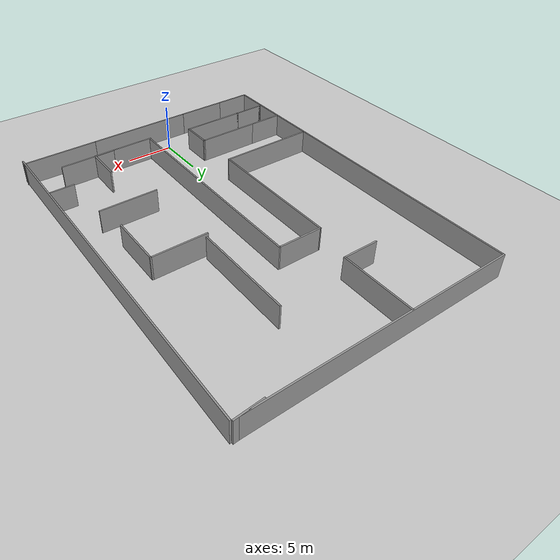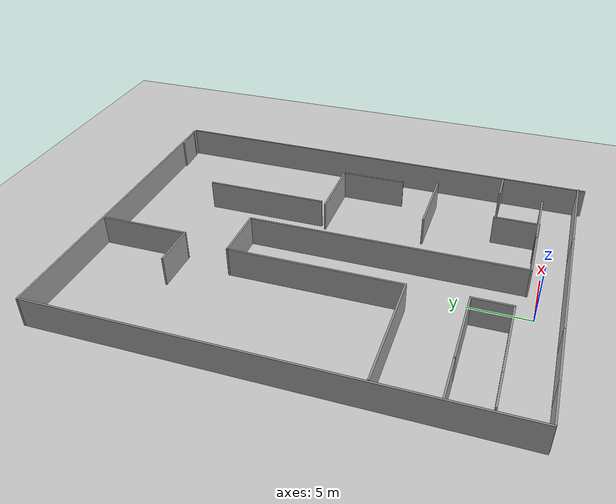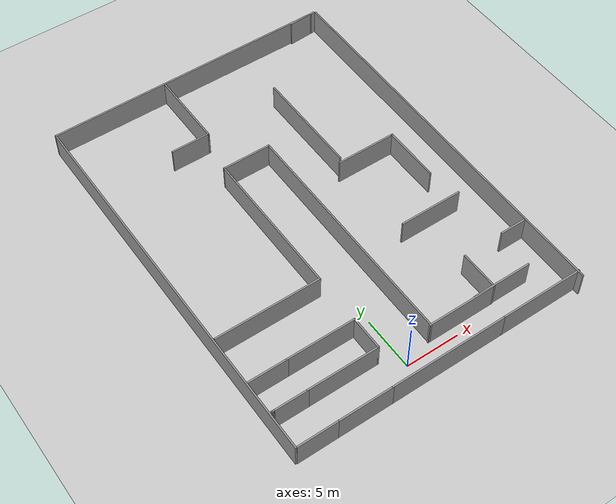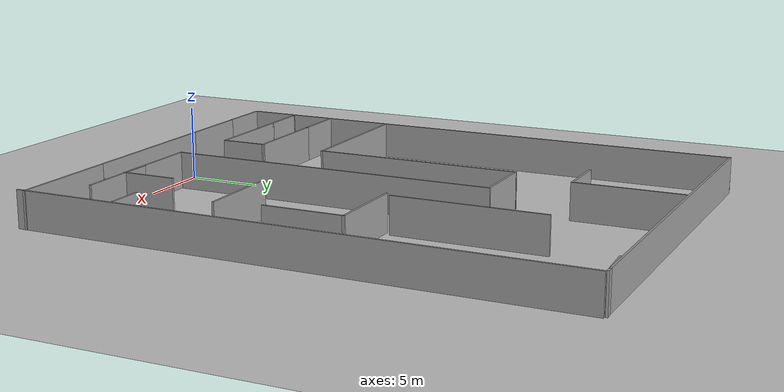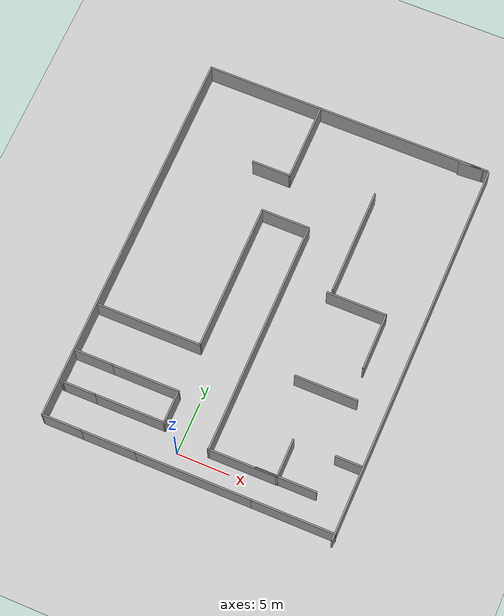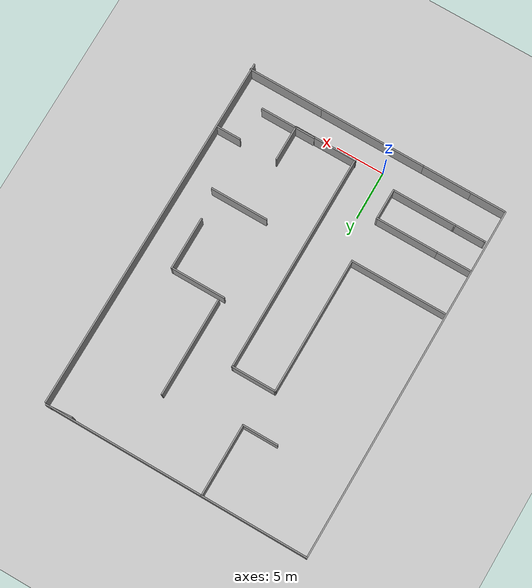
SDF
<sdf version="1.4">
  <world name="default">

    <scene>
      <ambient>0.4 0.4 0.4 1</ambient>
      <background>0.7 0.7 0.7 1</background>
      <shadows>true</shadows>
    </scene>

    <!-- A global light source -->
    <include>
      <uri>model://sun</uri>
    </include>

    <!-- A ground plane -->
    <include>
      <uri>model://ground_plane</uri>
    </include>

    <physics type="ode">
      <real_time_update_rate>1000.0</real_time_update_rate>
      <max_step_size>0.001</max_step_size>
      <real_time_factor>1</real_time_factor>
      <ode>
        <solver>
          <type>quick</type>
          <iters>150</iters>
          <precon_iters>0</precon_iters>
          <sor>1.400000</sor>
          <use_dynamic_moi_rescaling>1</use_dynamic_moi_rescaling>
        </solver>
        <constraints>
          <cfm>0.00001</cfm>
          <erp>0.2</erp>
          <contact_max_correcting_vel>2000.000000</contact_max_correcting_vel>
          <contact_surface_layer>0.01000</contact_surface_layer>
        </constraints>
      </ode>
    </physics>
  <model name='mymap'>
    <pose>7.77192 9.18024 0 0 -0 0</pose>
    <link name='Wall_11'>
      <collision name='Wall_11_Collision'>
        <geometry>
          <box>
            <size>5.5 0.15 2.5</size>
          </box>
        </geometry>
        <pose>0 0 1.25 0 -0 0</pose>
      </collision>
      <visual name='Wall_11_Visual'>
        <pose>0 0 1.25 0 -0 0</pose>
        <geometry>
          <box>
            <size>5.5 0.15 2.5</size>
          </box>
        </geometry>
        <material>
          <script>
            <uri>file://media/materials/scripts/gazebo.material</uri>
            <name>Gazebo/Grey</name>
          </script>
          <ambient>1 1 1 1</ambient>
        </material>
        <meta>
          <layer>0</layer>
        </meta>
      </visual>
      <pose>4.51089 6.43024 0 0 -0 1.5708</pose>
    </link>
    <link name='Wall_12'>
      <collision name='Wall_12_Collision'>
        <geometry>
          <box>
            <size>5.75 0.15 2.5</size>
          </box>
        </geometry>
        <pose>0 0 1.25 0 -0 0</pose>
      </collision>
      <visual name='Wall_12_Visual'>
        <pose>0 0 1.25 0 -0 0</pose>
        <geometry>
          <box>
            <size>5.75 0.15 2.5</size>
          </box>
        </geometry>
        <material>
          <script>
            <uri>file://media/materials/scripts/gazebo.material</uri>
            <name>Gazebo/Grey</name>
          </script>
          <ambient>1 1 1 1</ambient>
        </material>
        <meta>
          <layer>0</layer>
        </meta>
      </visual>
      <pose>1.7109 9.10524 0 0 -0 3.14159</pose>
    </link>
    <link name='Wall_3'>
      <collision name='Wall_3_Collision'>
        <geometry>
          <box>
            <size>5.75 0.15 2.5</size>
          </box>
        </geometry>
        <pose>0 0 1.25 0 -0 0</pose>
      </collision>
      <visual name='Wall_3_Visual'>
        <pose>0 0 1.25 0 -0 0</pose>
        <geometry>
          <box>
            <size>5.75 0.15 2.5</size>
          </box>
        </geometry>
        <material>
          <script>
            <uri>file://media/materials/scripts/gazebo.material</uri>
            <name>Gazebo/Grey</name>
          </script>
          <ambient>1 1 1 1</ambient>
        </material>
        <meta>
          <layer>0</layer>
        </meta>
      </visual>
      <pose>2.183 -8.30822 0 0 -0 0</pose>
    </link>
    <link name='Wall_5'>
      <collision name='Wall_5_Collision'>
        <geometry>
          <box>
            <size>2.5 0.15 2.5</size>
          </box>
        </geometry>
        <pose>0 0 1.25 0 -0 0</pose>
      </collision>
      <visual name='Wall_5_Visual'>
        <pose>0 0 1.25 0 -0 0</pose>
        <geometry>
          <box>
            <size>2.5 0.15 2.5</size>
          </box>
        </geometry>
        <material>
          <script>
            <uri>file://media/materials/scripts/gazebo.material</uri>
            <name>Gazebo/Grey</name>
          </script>
          <ambient>1 1 1 1</ambient>
        </material>
        <meta>
          <layer>0</layer>
        </meta>
      </visual>
      <pose>6.52192 -4.68483 0 0 -0 0</pose>
    </link>
    <link name='Wall_7'>
      <collision name='Wall_7_Collision'>
        <geometry>
          <box>
            <size>6 0.15 2.5</size>
          </box>
        </geometry>
        <pose>0 0 1.25 0 -0 0</pose>
      </collision>
      <visual name='Wall_7_Visual'>
        <pose>0 0 1.25 0 -0 0</pose>
        <geometry>
          <box>
            <size>6 0.15 2.5</size>
          </box>
        </geometry>
        <material>
          <script>
            <uri>file://media/materials/scripts/gazebo.material</uri>
            <name>Gazebo/Grey</name>
          </script>
          <ambient>1 1 1 1</ambient>
        </material>
        <meta>
          <layer>0</layer>
        </meta>
      </visual>
      <pose>2.2058 0.72814 0 0 -0 3.14159</pose>
    </link>
    <static>1</static>
  </model>
  <model name='Untitled'>
    <pose>1.96533 16.2746 0 0 -0 0</pose>
    <link name='Wall_12'>
      <collision name='Wall_12_Collision'>
        <geometry>
          <box>
            <size>3.25 0.15 2.5</size>
          </box>
        </geometry>
        <pose>0 0 1.25 0 -0 0</pose>
      </collision>
      <visual name='Wall_12_Visual'>
        <pose>0 0 1.25 0 -0 0</pose>
        <geometry>
          <box>
            <size>3.25 0.15 2.5</size>
          </box>
        </geometry>
        <material>
          <script>
            <uri>file://media/materials/scripts/gazebo.material</uri>
            <name>Gazebo/Grey</name>
          </script>
          <ambient>1 1 1 1</ambient>
        </material>
        <meta>
          <layer>0</layer>
        </meta>
      </visual>
      <pose>-3.77455 -13.2054 0 0 -0 1.5708</pose>
    </link>
    <link name='Wall_13'>
      <collision name='Wall_13_Collision'>
        <geometry>
          <box>
            <size>6.5 0.15 2.5</size>
          </box>
        </geometry>
        <pose>0 0 1.25 0 -0 0</pose>
      </collision>
      <visual name='Wall_13_Visual'>
        <pose>0 0 1.25 0 -0 0</pose>
        <geometry>
          <box>
            <size>6.5 0.15 2.5</size>
          </box>
        </geometry>
        <material>
          <script>
            <uri>file://media/materials/scripts/gazebo.material</uri>
            <name>Gazebo/Grey</name>
          </script>
          <ambient>1 1 1 1</ambient>
        </material>
        <meta>
          <layer>0</layer>
        </meta>
      </visual>
      <pose>-6.94955 -11.6554 0 0 -0 3.14159</pose>
    </link>
    <link name='Wall_177'>
      <collision name='Wall_177_Collision'>
        <geometry>
          <box>
            <size>2.76032 0.15 2.5</size>
          </box>
        </geometry>
        <pose>0 0 1.25 0 -0 0</pose>
      </collision>
      <visual name='Wall_177_Visual'>
        <pose>0 0 1.25 0 -0 0</pose>
        <geometry>
          <box>
            <size>2.76032 0.15 2.5</size>
          </box>
        </geometry>
        <material>
          <script>
            <uri>file://media/materials/scripts/gazebo.material</uri>
            <name>Gazebo/Grey</name>
          </script>
          <ambient>1 1 1 1</ambient>
        </material>
        <meta>
          <layer>0</layer>
        </meta>
      </visual>
      <pose>12.3652 18.641 0 0 -0 0.062386</pose>
    </link>
    <link name='Wall_178'>
      <collision name='Wall_178_Collision'>
        <geometry>
          <box>
            <size>37.4366 0.15 2.5</size>
          </box>
        </geometry>
        <pose>0 0 1.25 0 -0 0</pose>
      </collision>
      <visual name='Wall_178_Visual'>
        <pose>0 0 1.25 0 -0 0</pose>
        <geometry>
          <box>
            <size>37.4366 0.15 2.5</size>
          </box>
        </geometry>
        <material>
          <script>
            <uri>file://media/materials/scripts/gazebo.material</uri>
            <name>Gazebo/Grey</name>
          </script>
          <ambient>1 1 1 1</ambient>
        </material>
        <meta>
          <layer>0</layer>
        </meta>
      </visual>
      <pose>13.7375 -0.083447 0 0 -0 -1.57579</pose>
    </link>
    <link name='Wall_21'>
      <collision name='Wall_21_Collision'>
        <geometry>
          <box>
            <size>3.75 0.15 2.5</size>
          </box>
        </geometry>
        <pose>0 0 1.25 0 -0 0</pose>
      </collision>
      <visual name='Wall_21_Visual'>
        <pose>0 0 1.25 0 -0 0</pose>
        <geometry>
          <box>
            <size>3.75 0.15 2.5</size>
          </box>
        </geometry>
        <material>
          <script>
            <uri>file://media/materials/scripts/gazebo.material</uri>
            <name>Gazebo/Grey</name>
          </script>
          <ambient>1 1 1 1</ambient>
        </material>
        <meta>
          <layer>0</layer>
        </meta>
      </visual>
      <pose>-11.8933 -18.1939 0 0 -0 3.14159</pose>
    </link>
    <link name='Wall_25'>
      <collision name='Wall_25_Collision'>
        <geometry>
          <box>
            <size>0.15 0.15 2.5</size>
          </box>
        </geometry>
        <pose>0 0 1.25 0 -0 0</pose>
      </collision>
      <visual name='Wall_25_Visual'>
        <pose>0 0 1.25 0 -0 0</pose>
        <geometry>
          <box>
            <size>0.15 0.15 2.5</size>
          </box>
        </geometry>
        <material>
          <script>
            <uri>file://media/materials/scripts/gazebo.material</uri>
            <name>Gazebo/Grey</name>
          </script>
          <ambient>1 1 1 1</ambient>
        </material>
        <meta>
          <layer>0</layer>
        </meta>
      </visual>
      <pose>-10.3687 -14.7554 0 0 -0 0</pose>
    </link>
    <link name='Wall_33'>
      <collision name='Wall_33_Collision'>
        <geometry>
          <box>
            <size>0.15 0.15 2.5</size>
          </box>
        </geometry>
        <pose>0 0 1.25 0 -0 0</pose>
      </collision>
      <visual name='Wall_33_Visual'>
        <pose>0 0 1.25 0 -0 0</pose>
        <geometry>
          <box>
            <size>0.15 0.15 2.5</size>
          </box>
        </geometry>
        <material>
          <script>
            <uri>file://media/materials/scripts/gazebo.material</uri>
            <name>Gazebo/Grey</name>
          </script>
          <ambient>1 1 1 1</ambient>
        </material>
        <meta>
          <layer>0</layer>
        </meta>
      </visual>
      <pose>-13.4687 -14.7554 0 0 -0 0</pose>
    </link>
    <link name='Wall_35'>
      <collision name='Wall_35_Collision'>
        <geometry>
          <box>
            <size>3.25 0.15 2.5</size>
          </box>
        </geometry>
        <pose>0 0 1.25 0 -0 0</pose>
      </collision>
      <visual name='Wall_35_Visual'>
        <pose>0 0 1.25 0 -0 0</pose>
        <geometry>
          <box>
            <size>3.25 0.15 2.5</size>
          </box>
        </geometry>
        <material>
          <script>
            <uri>file://media/materials/scripts/gazebo.material</uri>
            <name>Gazebo/Grey</name>
          </script>
          <ambient>1 1 1 1</ambient>
        </material>
        <meta>
          <layer>0</layer>
        </meta>
      </visual>
      <pose>-11.9187 -14.7554 0 0 -0 3.14159</pose>
    </link>
    <link name='Wall_37'>
      <collision name='Wall_37_Collision'>
        <geometry>
          <box>
            <size>0.25 0.15 2.5</size>
          </box>
        </geometry>
        <pose>0 0 1.25 0 -0 0</pose>
      </collision>
      <visual name='Wall_37_Visual'>
        <pose>0 0 1.25 0 -0 0</pose>
        <geometry>
          <box>
            <size>0.25 0.15 2.5</size>
          </box>
        </geometry>
        <material>
          <script>
            <uri>file://media/materials/scripts/gazebo.material</uri>
            <name>Gazebo/Grey</name>
          </script>
          <ambient>1 1 1 1</ambient>
        </material>
        <meta>
          <layer>0</layer>
        </meta>
      </visual>
      <pose>-13.5187 -14.7554 0 0 -0 3.14159</pose>
    </link>
    <link name='Wall_4'>
      <collision name='Wall_4_Collision'>
        <geometry>
          <box>
            <size>11 0.15 2.5</size>
          </box>
        </geometry>
        <pose>0 0 1.25 0 -0 0</pose>
      </collision>
      <visual name='Wall_4_Visual'>
        <pose>0 0 1.25 0 -0 0</pose>
        <geometry>
          <box>
            <size>11 0.15 2.5</size>
          </box>
        </geometry>
        <material>
          <script>
            <uri>file://media/materials/scripts/gazebo.material</uri>
            <name>Gazebo/Grey</name>
          </script>
          <ambient>1 1 1 1</ambient>
        </material>
        <meta>
          <layer>0</layer>
        </meta>
      </visual>
      <pose>0.431747 -18.1939 0 0 -0 0</pose>
    </link>
    <link name='Wall_41'>
      <collision name='Wall_41_Collision'>
        <geometry>
          <box>
            <size>22.75 0.15 2.5</size>
          </box>
        </geometry>
        <pose>0 0 1.25 0 -0 0</pose>
      </collision>
      <visual name='Wall_41_Visual'>
        <pose>0 0 1.25 0 -0 0</pose>
        <geometry>
          <box>
            <size>22.75 0.15 2.5</size>
          </box>
        </geometry>
        <material>
          <script>
            <uri>file://media/materials/scripts/gazebo.material</uri>
            <name>Gazebo/Grey</name>
          </script>
          <ambient>1 1 1 1</ambient>
        </material>
        <meta>
          <layer>0</layer>
        </meta>
      </visual>
      <pose>0.774348 -4.16261 0 0 -0 1.5708</pose>
    </link>
    <link name='Wall_42'>
      <collision name='Wall_42_Collision'>
        <geometry>
          <box>
            <size>4.65321 0.15 2.5</size>
          </box>
        </geometry>
        <pose>0 0 1.25 0 -0 0</pose>
      </collision>
      <visual name='Wall_42_Visual'>
        <pose>0 0 1.25 0 -0 0</pose>
        <geometry>
          <box>
            <size>4.65321 0.15 2.5</size>
          </box>
        </geometry>
        <material>
          <script>
            <uri>file://media/materials/scripts/gazebo.material</uri>
            <name>Gazebo/Grey</name>
          </script>
          <ambient>1 1 1 1</ambient>
        </material>
        <meta>
          <layer>0</layer>
        </meta>
      </visual>
      <pose>-1.52378 7.13845 0 0 -0 3.14112</pose>
    </link>
    <link name='Wall_43'>
      <collision name='Wall_43_Collision'>
        <geometry>
          <box>
            <size>14.25 0.15 2.5</size>
          </box>
        </geometry>
        <pose>0 0 1.25 0 -0 0</pose>
      </collision>
      <visual name='Wall_43_Visual'>
        <pose>0 0 1.25 0 -0 0</pose>
        <geometry>
          <box>
            <size>14.25 0.15 2.5</size>
          </box>
        </geometry>
        <material>
          <script>
            <uri>file://media/materials/scripts/gazebo.material</uri>
            <name>Gazebo/Grey</name>
          </script>
          <ambient>1 1 1 1</ambient>
        </material>
        <meta>
          <layer>0</layer>
        </meta>
      </visual>
      <pose>-3.77538 0.089515 0 0 -0 -1.5708</pose>
    </link>
    <link name='Wall_48'>
      <collision name='Wall_48_Collision'>
        <geometry>
          <box>
            <size>37 0.15 2.5</size>
          </box>
        </geometry>
        <pose>0 0 1.25 0 -0 0</pose>
      </collision>
      <visual name='Wall_48_Visual'>
        <pose>0 0 1.25 0 -0 0</pose>
        <geometry>
          <box>
            <size>37 0.15 2.5</size>
          </box>
        </geometry>
        <material>
          <script>
            <uri>file://media/materials/scripts/gazebo.material</uri>
            <name>Gazebo/Grey</name>
          </script>
          <ambient>1 1 1 1</ambient>
        </material>
        <meta>
          <layer>0</layer>
        </meta>
      </visual>
      <pose>-13.8309 0.2713 0 0 -0 -1.5708</pose>
    </link>
    <link name='Wall_52'>
      <collision name='Wall_52_Collision'>
        <geometry>
          <box>
            <size>8 0.15 2.5</size>
          </box>
        </geometry>
        <pose>0 0 1.25 0 -0 0</pose>
      </collision>
      <visual name='Wall_52_Visual'>
        <pose>0 0 1.25 0 -0 0</pose>
        <geometry>
          <box>
            <size>8 0.15 2.5</size>
          </box>
        </geometry>
        <material>
          <script>
            <uri>file://media/materials/scripts/gazebo.material</uri>
            <name>Gazebo/Grey</name>
          </script>
          <ambient>1 1 1 1</ambient>
        </material>
        <meta>
          <layer>0</layer>
        </meta>
      </visual>
      <pose>9.78175 -18.1939 0 0 -0 0</pose>
    </link>
    <link name='Wall_54'>
      <collision name='Wall_54_Collision'>
        <geometry>
          <box>
            <size>6.59679 0.15 2.5</size>
          </box>
        </geometry>
        <pose>0 0 1.25 0 -0 0</pose>
      </collision>
      <visual name='Wall_54_Visual'>
        <pose>0 0 1.25 0 -0 0</pose>
        <geometry>
          <box>
            <size>6.59679 0.15 2.5</size>
          </box>
        </geometry>
        <material>
          <script>
            <uri>file://media/materials/scripts/gazebo.material</uri>
            <name>Gazebo/Grey</name>
          </script>
          <ambient>1 1 1 1</ambient>
        </material>
        <meta>
          <layer>0</layer>
        </meta>
      </visual>
      <pose>3.95122 -15.4615 0 0 -0 0.00033</pose>
    </link>
    <link name='Wall_55'>
      <collision name='Wall_55_Collision'>
        <geometry>
          <box>
            <size>3.75 0.15 2.5</size>
          </box>
        </geometry>
        <pose>0 0 1.25 0 -0 0</pose>
      </collision>
      <visual name='Wall_55_Visual'>
        <pose>0 0 1.25 0 -0 0</pose>
        <geometry>
          <box>
            <size>3.75 0.15 2.5</size>
          </box>
        </geometry>
        <material>
          <script>
            <uri>file://media/materials/scripts/gazebo.material</uri>
            <name>Gazebo/Grey</name>
          </script>
          <ambient>1 1 1 1</ambient>
        </material>
        <meta>
          <layer>0</layer>
        </meta>
      </visual>
      <pose>7.17462 -13.6605 0 0 -0 1.5708</pose>
    </link>
    <link name='Wall_6'>
      <collision name='Wall_6_Collision'>
        <geometry>
          <box>
            <size>5.25 0.15 2.5</size>
          </box>
        </geometry>
        <pose>0 0 1.25 0 -0 0</pose>
      </collision>
      <visual name='Wall_6_Visual'>
        <pose>0 0 1.25 0 -0 0</pose>
        <geometry>
          <box>
            <size>5.25 0.15 2.5</size>
          </box>
        </geometry>
        <material>
          <script>
            <uri>file://media/materials/scripts/gazebo.material</uri>
            <name>Gazebo/Grey</name>
          </script>
          <ambient>1 1 1 1</ambient>
        </material>
        <meta>
          <layer>0</layer>
        </meta>
      </visual>
      <pose>-7.54325 -18.1939 0 0 -0 3.14159</pose>
    </link>
    <link name='Wall_63'>
      <collision name='Wall_63_Collision'>
        <geometry>
          <box>
            <size>3.75 0.15 2.5</size>
          </box>
        </geometry>
        <pose>0 0 1.25 0 -0 0</pose>
      </collision>
      <visual name='Wall_63_Visual'>
        <pose>0 0 1.25 0 -0 0</pose>
        <geometry>
          <box>
            <size>3.75 0.15 2.5</size>
          </box>
        </geometry>
        <material>
          <script>
            <uri>file://media/materials/scripts/gazebo.material</uri>
            <name>Gazebo/Grey</name>
          </script>
          <ambient>1 1 1 1</ambient>
        </material>
        <meta>
          <layer>0</layer>
        </meta>
      </visual>
      <pose>-4.60424 11.2856 0 0 -0 0</pose>
    </link>
    <link name='Wall_64'>
      <collision name='Wall_64_Collision'>
        <geometry>
          <box>
            <size>7.5 0.15 2.5</size>
          </box>
        </geometry>
        <pose>0 0 1.25 0 -0 0</pose>
      </collision>
      <visual name='Wall_64_Visual'>
        <pose>0 0 1.25 0 -0 0</pose>
        <geometry>
          <box>
            <size>7.5 0.15 2.5</size>
          </box>
        </geometry>
        <material>
          <script>
            <uri>file://media/materials/scripts/gazebo.material</uri>
            <name>Gazebo/Grey</name>
          </script>
          <ambient>1 1 1 1</ambient>
        </material>
        <meta>
          <layer>0</layer>
        </meta>
      </visual>
      <pose>-2.80424 14.9606 0 0 -0 1.5708</pose>
    </link>
    <link name='Wall_69'>
      <collision name='Wall_69_Collision'>
        <geometry>
          <box>
            <size>10.25 0.15 2.5</size>
          </box>
        </geometry>
        <pose>0 0 1.25 0 -0 0</pose>
      </collision>
      <visual name='Wall_69_Visual'>
        <pose>0 0 1.25 0 -0 0</pose>
        <geometry>
          <box>
            <size>10.25 0.15 2.5</size>
          </box>
        </geometry>
        <material>
          <script>
            <uri>file://media/materials/scripts/gazebo.material</uri>
            <name>Gazebo/Grey</name>
          </script>
          <ambient>1 1 1 1</ambient>
        </material>
        <meta>
          <layer>0</layer>
        </meta>
      </visual>
      <pose>5.04082 7.52006 0 0 -0 -1.5708</pose>
    </link>
    <link name='Wall_75'>
      <collision name='Wall_75_Collision'>
        <geometry>
          <box>
            <size>3.75 0.15 2.5</size>
          </box>
        </geometry>
        <pose>0 0 1.25 0 -0 0</pose>
      </collision>
      <visual name='Wall_75_Visual'>
        <pose>0 0 1.25 0 -0 0</pose>
        <geometry>
          <box>
            <size>3.75 0.15 2.5</size>
          </box>
        </geometry>
        <material>
          <script>
            <uri>file://media/materials/scripts/gazebo.material</uri>
            <name>Gazebo/Grey</name>
          </script>
          <ambient>1 1 1 1</ambient>
        </material>
        <meta>
          <layer>0</layer>
        </meta>
      </visual>
      <pose>-11.9246 -11.6554 0 0 -0 3.14159</pose>
    </link>
    <link name='Wall_77'>
      <collision name='Wall_77_Collision'>
        <geometry>
          <box>
            <size>10 0.15 2.5</size>
          </box>
        </geometry>
        <pose>0 0 1.25 0 -0 0</pose>
      </collision>
      <visual name='Wall_77_Visual'>
        <pose>0 0 1.25 0 -0 0</pose>
        <geometry>
          <box>
            <size>10 0.15 2.5</size>
          </box>
        </geometry>
        <material>
          <script>
            <uri>file://media/materials/scripts/gazebo.material</uri>
            <name>Gazebo/Grey</name>
          </script>
          <ambient>1 1 1 1</ambient>
        </material>
        <meta>
          <layer>0</layer>
        </meta>
      </visual>
      <pose>-8.70038 -6.96049 0 0 -0 3.14159</pose>
    </link>
    <link name='Wall_79'>
      <collision name='Wall_79_Collision'>
        <geometry>
          <box>
            <size>27.25 0.15 2.5</size>
          </box>
        </geometry>
        <pose>0 0 1.25 0 -0 0</pose>
      </collision>
      <visual name='Wall_79_Visual'>
        <pose>0 0 1.25 0 -0 0</pose>
        <geometry>
          <box>
            <size>27.25 0.15 2.5</size>
          </box>
        </geometry>
        <material>
          <script>
            <uri>file://media/materials/scripts/gazebo.material</uri>
            <name>Gazebo/Grey</name>
          </script>
          <ambient>1 1 1 1</ambient>
        </material>
        <meta>
          <layer>0</layer>
        </meta>
      </visual>
      <pose>-0.280904 18.6963 0 0 -0 0</pose>
    </link>
    <link name='Wall_9'>
      <collision name='Wall_9_Collision'>
        <geometry>
          <box>
            <size>6.74411 0.15 2.5</size>
          </box>
        </geometry>
        <pose>0 0 1.25 0 -0 0</pose>
      </collision>
      <visual name='Wall_9_Visual'>
        <pose>0 0 1.25 0 -0 0</pose>
        <geometry>
          <box>
            <size>6.74411 0.15 2.5</size>
          </box>
        </geometry>
        <material>
          <script>
            <uri>file://media/materials/scripts/gazebo.material</uri>
            <name>Gazebo/Grey</name>
          </script>
          <ambient>1 1 1 1</ambient>
        </material>
        <meta>
          <layer>0</layer>
        </meta>
      </visual>
      <pose>-7.07161 -14.7554 0 0 -0 0</pose>
    </link>
    <static>1</static>
  </model>
  </world>
</sdf>
